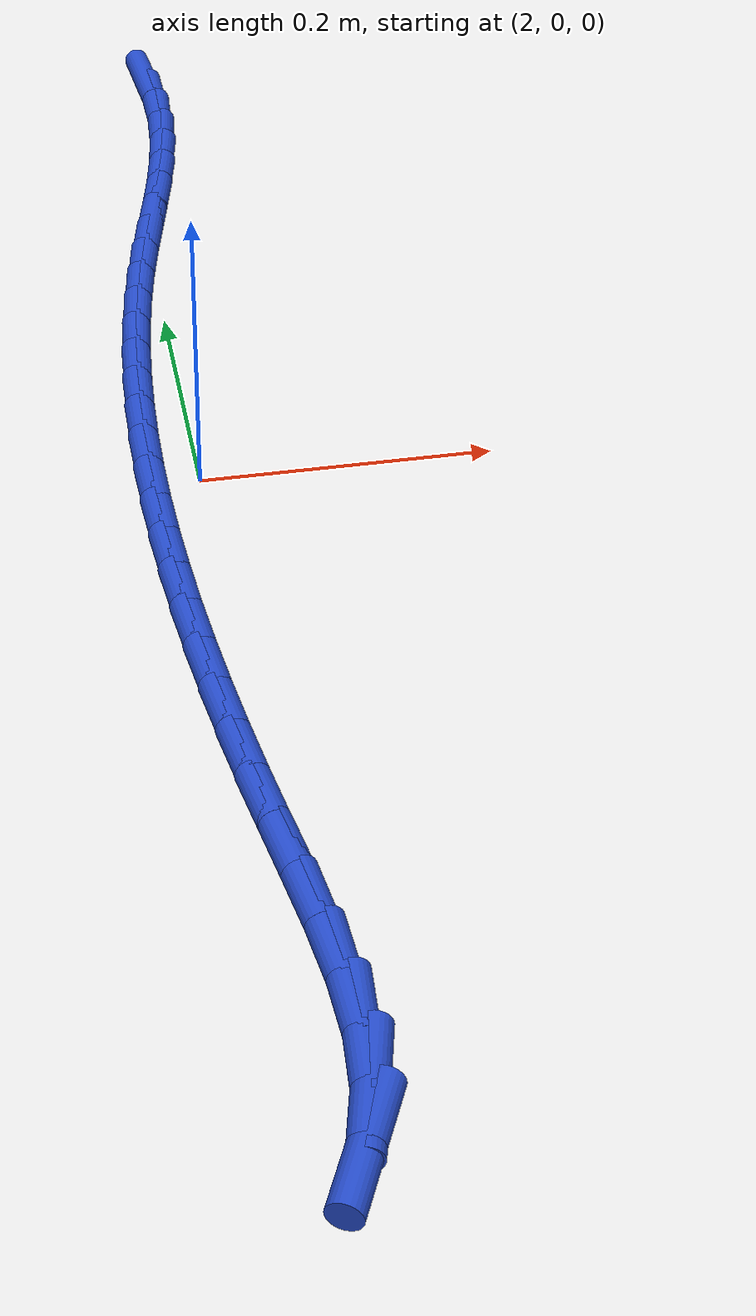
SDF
<sdf version="1.6">
 <world name="default">
  <model name="ground_plane">
   <static>1</static>
   <link name="link">
    <collision name="collision">
     <geometry><plane><normal>0 0 1</normal><size>100 100</size></plane></geometry>
     <surface><friction><ode><mu>100</mu><mu2>50</mu2></ode></friction></surface>
    </collision>
    <visual name="visual">
     <cast_shadows>0</cast_shadows>
     <geometry><plane><normal>0 0 1</normal><size>100 100</size></plane></geometry>
     <material>
      <script><uri>file://media/materials/scripts/gazebo.material</uri><name>Gazebo/WhiteGlow</name></script>
     </material>
    </visual>
   </link>
  </model>
  <model name="line">
   <link name="link_79">
    <pose>2.02854178427439 0.5795946269584795 0.01 0 1.57 -1.48841998224274</pose>
    <collision name="collision">
     <geometry><cylinder><radius>0.01</radius><length>0.08</length></cylinder></geometry>
    </collision>
    <visual name="visual">
     <material>
      <script><name>Gazebo/Blue</name><uri>file://media/materials/scripts/gazebo.material</uri></script>
     </material>
     <geometry><cylinder><radius>0.01</radius><length>0.08</length></cylinder></geometry>
    </visual>
   </link>
   <link name="link_80">
    <pose>2.0318333008570635 0.5397279884116178 0.01 0 1.57 -1.5655318531445603</pose>
    <collision name="collision">
     <geometry><cylinder><radius>0.01</radius><length>0.08</length></cylinder></geometry>
    </collision>
    <visual name="visual">
     <material>
      <script><name>Gazebo/Blue</name><uri>file://media/materials/scripts/gazebo.material</uri></script>
     </material>
     <geometry><cylinder><radius>0.01</radius><length>0.08</length></cylinder></geometry>
    </visual>
   </link>
   <link name="link_81">
    <pose>2.03203706415749 0.5010229949887464 0.01 0 1.57 1.5035822298520551</pose>
    <collision name="collision">
     <geometry><cylinder><radius>0.01</radius><length>0.08</length></cylinder></geometry>
    </collision>
    <visual name="visual">
     <material>
      <script><name>Gazebo/Blue</name><uri>file://media/materials/scripts/gazebo.material</uri></script>
     </material>
     <geometry><cylinder><radius>0.01</radius><length>0.08</length></cylinder></geometry>
    </visual>
   </link>
   <link name="link_82">
    <pose>2.0295133193657384 0.46353170633591406 0.01 0 1.57 1.4430906243674748</pose>
    <collision name="collision">
     <geometry><cylinder><radius>0.01</radius><length>0.08</length></cylinder></geometry>
    </collision>
    <visual name="visual">
     <material>
      <script><name>Gazebo/Blue</name><uri>file://media/materials/scripts/gazebo.material</uri></script>
     </material>
     <geometry><cylinder><radius>0.01</radius><length>0.08</length></cylinder></geometry>
    </visual>
   </link>
   <link name="link_83">
    <pose>2.0248285634363623 0.4270473473029734 0.01 0 1.57 1.3966643913521437</pose>
    <collision name="collision">
     <geometry><cylinder><radius>0.01</radius><length>0.08</length></cylinder></geometry>
    </collision>
    <visual name="visual">
     <material>
      <script><name>Gazebo/Blue</name><uri>file://media/materials/scripts/gazebo.material</uri></script>
     </material>
     <geometry><cylinder><radius>0.01</radius><length>0.08</length></cylinder></geometry>
    </visual>
   </link>
   <link name="link_84">
    <pose>2.018550878321735 0.39136115365333807 0.01 0 1.57 1.3656548942596838</pose>
    <collision name="collision">
     <geometry><cylinder><radius>0.01</radius><length>0.08</length></cylinder></geometry>
    </collision>
    <visual name="visual">
     <material>
      <script><name>Gazebo/Blue</name><uri>file://media/materials/scripts/gazebo.material</uri></script>
     </material>
     <geometry><cylinder><radius>0.01</radius><length>0.08</length></cylinder></geometry>
    </visual>
   </link>
   <link name="link_85">
    <pose>2.01124834597423 0.35626436115042187 0.01 0 1.57 1.3509035658939388</pose>
    <collision name="collision">
     <geometry><cylinder><radius>0.01</radius><length>0.08</length></cylinder></geometry>
    </collision>
    <visual name="visual">
     <material>
      <script><name>Gazebo/Blue</name><uri>file://media/materials/scripts/gazebo.material</uri></script>
     </material>
     <geometry><cylinder><radius>0.01</radius><length>0.08</length></cylinder></geometry>
    </visual>
   </link>
   <link name="link_86">
    <pose>2.003489048346222 0.3215482055576393 0.01 0 1.57 1.3529144486788878</pose>
    <collision name="collision">
     <geometry><cylinder><radius>0.01</radius><length>0.08</length></cylinder></geometry>
    </collision>
    <visual name="visual">
     <material>
      <script><name>Gazebo/Blue</name><uri>file://media/materials/scripts/gazebo.material</uri></script>
     </material>
     <geometry><cylinder><radius>0.01</radius><length>0.08</length></cylinder></geometry>
    </visual>
   </link>
   <link name="link_87">
    <pose>1.9958410673900833 0.2870039226384032 0.01 0 1.57 1.3717891092663264</pose>
    <collision name="collision">
     <geometry><cylinder><radius>0.01</radius><length>0.08</length></cylinder></geometry>
    </collision>
    <visual name="visual">
     <material>
      <script><name>Gazebo/Blue</name><uri>file://media/materials/scripts/gazebo.material</uri></script>
     </material>
     <geometry><cylinder><radius>0.01</radius><length>0.08</length></cylinder></geometry>
    </visual>
   </link>
   <link name="link_88">
    <pose>1.9888672129436198 0.2524245407548305 0.01 0 1.57 1.4004895127071482</pose>
    <collision name="collision">
     <geometry><cylinder><radius>0.01</radius><length>0.08</length></cylinder></geometry>
    </collision>
    <visual name="visual">
     <material>
      <script><name>Gazebo/Blue</name><uri>file://media/materials/scripts/gazebo.material</uri></script>
     </material>
     <geometry><cylinder><radius>0.01</radius><length>0.08</length></cylinder></geometry>
    </visual>
   </link>
   <link name="link_89">
    <pose>1.9828927632292759 0.21768385261130643 0.01 0 1.57 1.4291640493108273</pose>
    <collision name="collision">
     <geometry><cylinder><radius>0.01</radius><length>0.08</length></cylinder></geometry>
    </collision>
    <visual name="visual">
     <material>
      <script><name>Gazebo/Blue</name><uri>file://media/materials/scripts/gazebo.material</uri></script>
     </material>
     <geometry><cylinder><radius>0.01</radius><length>0.08</length></cylinder></geometry>
    </visual>
   </link>
   <link name="link_90">
    <pose>1.9779141414615193 0.18276746658938886 0.01 0 1.57 1.4570244252897078</pose>
    <collision name="collision">
     <geometry><cylinder><radius>0.01</radius><length>0.08</length></cylinder></geometry>
    </collision>
    <visual name="visual">
     <material>
      <script><name>Gazebo/Blue</name><uri>file://media/materials/scripts/gazebo.material</uri></script>
     </material>
     <geometry><cylinder><radius>0.01</radius><length>0.08</length></cylinder></geometry>
    </visual>
   </link>
   <link name="link_91">
    <pose>1.9739036259624358 0.1476692006992745 0.01 0 1.57 1.48400863735219</pose>
    <collision name="collision">
     <geometry><cylinder><radius>0.01</radius><length>0.08</length></cylinder></geometry>
    </collision>
    <visual name="visual">
     <material>
      <script><name>Gazebo/Blue</name><uri>file://media/materials/scripts/gazebo.material</uri></script>
     </material>
     <geometry><cylinder><radius>0.01</radius><length>0.08</length></cylinder></geometry>
    </visual>
   </link>
   <link name="link_92">
    <pose>1.9708334950541115 0.1123828729511609 0.01 0 1.57 1.5100640807516836</pose>
    <collision name="collision">
     <geometry><cylinder><radius>0.01</radius><length>0.08</length></cylinder></geometry>
    </collision>
    <visual name="visual">
     <material>
      <script><name>Gazebo/Blue</name><uri>file://media/materials/scripts/gazebo.material</uri></script>
     </material>
     <geometry><cylinder><radius>0.01</radius><length>0.08</length></cylinder></geometry>
    </visual>
   </link>
   <link name="link_93">
    <pose>1.9686760270586319 0.07690230135524581 0.01 0 1.57 1.5351474451523222</pose>
    <collision name="collision">
     <geometry><cylinder><radius>0.01</radius><length>0.08</length></cylinder></geometry>
    </collision>
    <visual name="visual">
     <material>
      <script><name>Gazebo/Blue</name><uri>file://media/materials/scripts/gazebo.material</uri></script>
     </material>
     <geometry><cylinder><radius>0.01</radius><length>0.08</length></cylinder></geometry>
    </visual>
   </link>
   <link name="link_94">
    <pose>1.9674035002980845 0.0412213039217258 0.01 0 1.57 1.5592244021013084</pose>
    <collision name="collision">
     <geometry><cylinder><radius>0.01</radius><length>0.08</length></cylinder></geometry>
    </collision>
    <visual name="visual">
     <material>
      <script><name>Gazebo/Blue</name><uri>file://media/materials/scripts/gazebo.material</uri></script>
     </material>
     <geometry><cylinder><radius>0.01</radius><length>0.08</length></cylinder></geometry>
    </visual>
   </link>
   <link name="link_95">
    <pose>1.9669881930945545 0.005333698660798445 0.01 0 1.57 -1.5593235298381938</pose>
    <collision name="collision">
     <geometry><cylinder><radius>0.01</radius><length>0.08</length></cylinder></geometry>
    </collision>
    <visual name="visual">
     <material>
      <script><name>Gazebo/Blue</name><uri>file://media/materials/scripts/gazebo.material</uri></script>
     </material>
     <geometry><cylinder><radius>0.01</radius><length>0.08</length></cylinder></geometry>
    </visual>
   </link>
   <link name="link_96">
    <pose>1.9674023837701278 -0.030766696417338868 0.01 0 1.57 -1.537328979743629</pose>
    <collision name="collision">
     <geometry><cylinder><radius>0.01</radius><length>0.08</length></cylinder></geometry>
    </collision>
    <visual name="visual">
     <material>
      <script><name>Gazebo/Blue</name><uri>file://media/materials/scripts/gazebo.material</uri></script>
     </material>
     <geometry><cylinder><radius>0.01</radius><length>0.08</length></cylinder></geometry>
    </visual>
   </link>
   <link name="link_97">
    <pose>1.9686183506468904 -0.06708606330248884 0.01 0 1.57 -1.5163953429740884</pose>
    <collision name="collision">
     <geometry><cylinder><radius>0.01</radius><length>0.08</length></cylinder></geometry>
    </collision>
    <visual name="visual">
     <material>
      <script><name>Gazebo/Blue</name><uri>file://media/materials/scripts/gazebo.material</uri></script>
     </material>
     <geometry><cylinder><radius>0.01</radius><length>0.08</length></cylinder></geometry>
    </visual>
   </link>
   <link name="link_98">
    <pose>1.9706083720469283 -0.10363058398445343 0.01 0 1.57 -1.4965269157456083</pose>
    <collision name="collision">
     <geometry><cylinder><radius>0.01</radius><length>0.08</length></cylinder></geometry>
    </collision>
    <visual name="visual">
     <material>
      <script><name>Gazebo/Blue</name><uri>file://media/materials/scripts/gazebo.material</uri></script>
     </material>
     <geometry><cylinder><radius>0.01</radius><length>0.08</length></cylinder></geometry>
    </visual>
   </link>
   <link name="link_99">
    <pose>1.9733447262923285 -0.14040644045303685 0.01 0 1.57 -1.4777223179570296</pose>
    <collision name="collision">
     <geometry><cylinder><radius>0.01</radius><length>0.08</length></cylinder></geometry>
    </collision>
    <visual name="visual">
     <material>
      <script><name>Gazebo/Blue</name><uri>file://media/materials/scripts/gazebo.material</uri></script>
     </material>
     <geometry><cylinder><radius>0.01</radius><length>0.08</length></cylinder></geometry>
    </visual>
   </link>
   <link name="link_100">
    <pose>1.976799691705176 -0.17741981469804108 0.01 0 1.57 -1.4599752566014337</pose>
    <collision name="collision">
     <geometry><cylinder><radius>0.01</radius><length>0.08</length></cylinder></geometry>
    </collision>
    <visual name="visual">
     <material>
      <script><name>Gazebo/Blue</name><uri>file://media/materials/scripts/gazebo.material</uri></script>
     </material>
     <geometry><cylinder><radius>0.01</radius><length>0.08</length></cylinder></geometry>
    </visual>
   </link>
   <link name="link_101">
    <pose>1.9809455466075565 -0.2146768887092687 0.01 0 1.57 -1.4432752627811503</pose>
    <collision name="collision">
     <geometry><cylinder><radius>0.01</radius><length>0.08</length></cylinder></geometry>
    </collision>
    <visual name="visual">
     <material>
      <script><name>Gazebo/Blue</name><uri>file://media/materials/scripts/gazebo.material</uri></script>
     </material>
     <geometry><cylinder><radius>0.01</radius><length>0.08</length></cylinder></geometry>
    </visual>
   </link>
   <link name="link_102">
    <pose>1.985754569321558 -0.25218384447652265 0.01 0 1.57 -1.4276083870567853</pose>
    <collision name="collision">
     <geometry><cylinder><radius>0.01</radius><length>0.08</length></cylinder></geometry>
    </collision>
    <visual name="visual">
     <material>
      <script><name>Gazebo/Blue</name><uri>file://media/materials/scripts/gazebo.material</uri></script>
     </material>
     <geometry><cylinder><radius>0.01</radius><length>0.08</length></cylinder></geometry>
    </visual>
   </link>
   <link name="link_103">
    <pose>1.9911990381692641 -0.28994686398960523 0.01 0 1.57 -1.412957842643851</pose>
    <collision name="collision">
     <geometry><cylinder><radius>0.01</radius><length>0.08</length></cylinder></geometry>
    </collision>
    <visual name="visual">
     <material>
      <script><name>Gazebo/Blue</name><uri>file://media/materials/scripts/gazebo.material</uri></script>
     </material>
     <geometry><cylinder><radius>0.01</radius><length>0.08</length></cylinder></geometry>
    </visual>
   </link>
   <link name="link_104">
    <pose>1.9972512314727633 -0.32797212923831964 0.01 0 1.57 -1.400176386818365</pose>
    <collision name="collision">
     <geometry><cylinder><radius>0.01</radius><length>0.08</length></cylinder></geometry>
    </collision>
    <visual name="visual">
     <material>
      <script><name>Gazebo/Blue</name><uri>file://media/materials/scripts/gazebo.material</uri></script>
     </material>
     <geometry><cylinder><radius>0.01</radius><length>0.08</length></cylinder></geometry>
    </visual>
   </link>
   <link name="link_105">
    <pose>2.003845838965885 -0.3662472026142534 0.01 0 1.57 -1.4050299117524396</pose>
    <collision name="collision">
     <geometry><cylinder><radius>0.01</radius><length>0.08</length></cylinder></geometry>
    </collision>
    <visual name="visual">
     <material>
      <script><name>Gazebo/Blue</name><uri>file://media/materials/scripts/gazebo.material</uri></script>
     </material>
     <geometry><cylinder><radius>0.01</radius><length>0.08</length></cylinder></geometry>
    </visual>
   </link>
   <link name="link_106">
    <pose>2.0102322396301084 -0.4044201761683164 0.01 0 1.57 -1.4424619435430928</pose>
    <collision name="collision">
     <geometry><cylinder><radius>0.01</radius><length>0.08</length></cylinder></geometry>
    </collision>
    <visual name="visual">
     <material>
      <script><name>Gazebo/Blue</name><uri>file://media/materials/scripts/gazebo.material</uri></script>
     </material>
     <geometry><cylinder><radius>0.01</radius><length>0.08</length></cylinder></geometry>
    </visual>
   </link>
   <link name="link_107">
    <pose>2.015061377548485 -0.44184270577534956 0.01 0 1.57 -1.518012678718963</pose>
    <collision name="collision">
     <geometry><cylinder><radius>0.01</radius><length>0.08</length></cylinder></geometry>
    </collision>
    <visual name="visual">
     <material>
      <script><name>Gazebo/Blue</name><uri>file://media/materials/scripts/gazebo.material</uri></script>
     </material>
     <geometry><cylinder><radius>0.01</radius><length>0.08</length></cylinder></geometry>
    </visual>
   </link>
   <link name="link_108">
    <pose>2.016964083532128 -0.4778564841522357 0.01 0 1.57 1.500422999142656</pose>
    <collision name="collision">
     <geometry><cylinder><radius>0.01</radius><length>0.08</length></cylinder></geometry>
    </collision>
    <visual name="visual">
     <material>
      <script><name>Gazebo/Blue</name><uri>file://media/materials/scripts/gazebo.material</uri></script>
     </material>
     <geometry><cylinder><radius>0.01</radius><length>0.08</length></cylinder></geometry>
    </visual>
   </link>
   <link name="link_109">
    <pose>2.0145711883921527 -0.5118032040158583 0.01 0 1.57 1.3203504393565442</pose>
    <collision name="collision">
     <geometry><cylinder><radius>0.01</radius><length>0.08</length></cylinder></geometry>
    </collision>
    <visual name="visual">
     <material>
      <script><name>Gazebo/Blue</name><uri>file://media/materials/scripts/gazebo.material</uri></script>
     </material>
     <geometry><cylinder><radius>0.01</radius><length>0.08</length></cylinder></geometry>
    </visual>
   </link>
   <link name="link_110">
    <pose>2.0065758311804265 -0.543057418011434 0.01 0 1.57 1.1204634853449915</pose>
    <collision name="collision">
     <geometry><cylinder><radius>0.01</radius><length>0.08</length></cylinder></geometry>
    </collision>
    <visual name="visual">
     <material>
      <script><name>Gazebo/Blue</name><uri>file://media/materials/scripts/gazebo.material</uri></script>
     </material>
     <geometry><cylinder><radius>0.01</radius><length>0.08</length></cylinder></geometry>
    </visual>
   </link>
  </model>
 </world>
</sdf>
